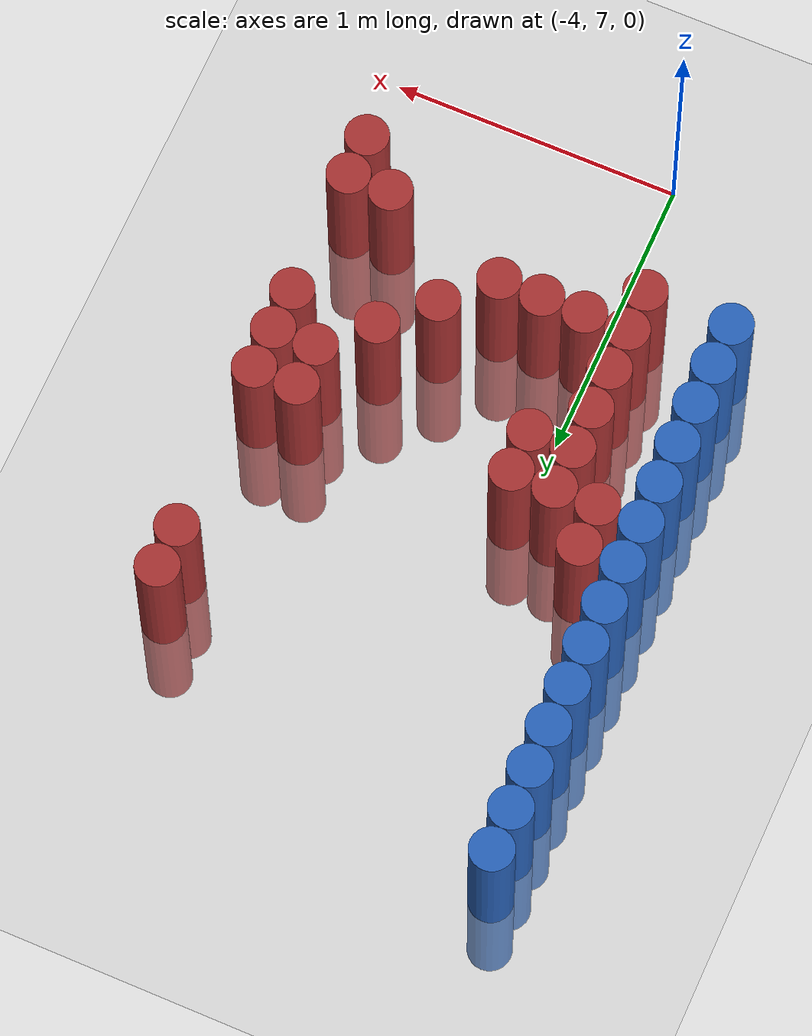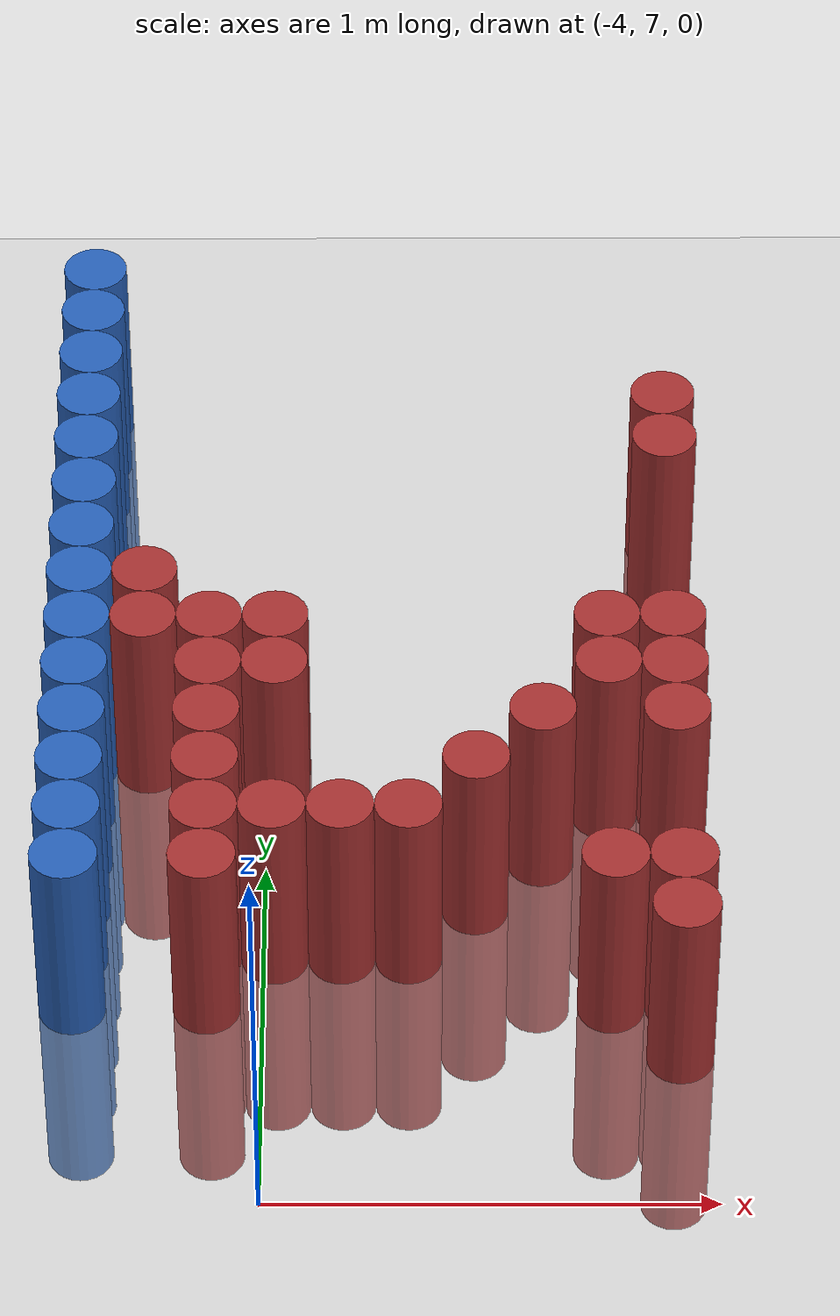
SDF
<sdf version="1.6">
 <world name="default">
  <model name="ground_plane">
   <static>1</static>
   <link name="link">
    <collision name="collision">
     <geometry><plane><normal>0 0 1</normal><size>100 100</size></plane></geometry>
     <surface><friction><ode><mu>100</mu><mu2>50</mu2></ode></friction></surface>
    </collision>
    <visual name="visual">
     <cast_shadows>0</cast_shadows>
     <geometry><plane><normal>0 0 1</normal><size>100 100</size></plane></geometry>
     <material>
      <script><uri>file://media/materials/scripts/gazebo.material</uri><name>Gazebo/Grey</name></script>
     </material>
    </visual>
   </link>
  </model>
  <model name="unit_cylinder_112">
   <static>1</static>
   <pose>-4.425000 7.575000 0.000000 0.000000 0.000000 0.000000</pose>
   <link name="link">
    <inertial>
     <mass>1</mass>
     <inertia><ixx>0.145833</ixx><ixy>0</ixy><ixz>0</ixz><iyy>0.145833</iyy><iyz>0</iyz><izz>0.125</izz></inertia>
    </inertial>
    <collision name="collision">
     <geometry><cylinder><radius>0.075000</radius><length>1</length></cylinder></geometry>
    </collision>
    <visual name="visual">
     <geometry><cylinder><radius>0.075000</radius><length>1</length></cylinder></geometry>
     <material>
      <ambient>0.152000 0.379000 0.720000 1</ambient>
      <diffuse>0.152000 0.379000 0.720000 1</diffuse>
     </material>
     <material>
      <script><name>Gazebo/Grey</name><uri>file://media/materials/scripts/gazebo.material</uri></script>
     </material>
    </visual>
    <sensor name="sensor_contact" type="contact"><contact><collision>collision</collision></contact></sensor>
   </link>
   <plugin filename="gz-sim-touchplugin-system" name="gz::sim::systems::TouchPlugin">
    <target>robot</target>
    <namespace>robot</namespace>
    <time>0.001</time>
    <enabled>true</enabled>
   </plugin>
  </model>
  <model name="unit_cylinder_113">
   <static>1</static>
   <pose>-4.425000 7.725000 0.000000 0.000000 0.000000 0.000000</pose>
   <link name="link">
    <inertial>
     <mass>1</mass>
     <inertia><ixx>0.145833</ixx><ixy>0</ixy><ixz>0</ixz><iyy>0.145833</iyy><iyz>0</iyz><izz>0.125</izz></inertia>
    </inertial>
    <collision name="collision">
     <geometry><cylinder><radius>0.075000</radius><length>1</length></cylinder></geometry>
    </collision>
    <visual name="visual">
     <geometry><cylinder><radius>0.075000</radius><length>1</length></cylinder></geometry>
     <material>
      <ambient>0.152000 0.379000 0.720000 1</ambient>
      <diffuse>0.152000 0.379000 0.720000 1</diffuse>
     </material>
     <material>
      <script><name>Gazebo/Grey</name><uri>file://media/materials/scripts/gazebo.material</uri></script>
     </material>
    </visual>
    <sensor name="sensor_contact" type="contact"><contact><collision>collision</collision></contact></sensor>
   </link>
   <plugin filename="gz-sim-touchplugin-system" name="gz::sim::systems::TouchPlugin">
    <target>robot</target>
    <namespace>robot</namespace>
    <time>0.001</time>
    <enabled>true</enabled>
   </plugin>
  </model>
  <model name="unit_cylinder_114">
   <static>1</static>
   <pose>-4.425000 7.875000 0.000000 0.000000 0.000000 0.000000</pose>
   <link name="link">
    <inertial>
     <mass>1</mass>
     <inertia><ixx>0.145833</ixx><ixy>0</ixy><ixz>0</ixz><iyy>0.145833</iyy><iyz>0</iyz><izz>0.125</izz></inertia>
    </inertial>
    <collision name="collision">
     <geometry><cylinder><radius>0.075000</radius><length>1</length></cylinder></geometry>
    </collision>
    <visual name="visual">
     <geometry><cylinder><radius>0.075000</radius><length>1</length></cylinder></geometry>
     <material>
      <ambient>0.152000 0.379000 0.720000 1</ambient>
      <diffuse>0.152000 0.379000 0.720000 1</diffuse>
     </material>
     <material>
      <script><name>Gazebo/Grey</name><uri>file://media/materials/scripts/gazebo.material</uri></script>
     </material>
    </visual>
    <sensor name="sensor_contact" type="contact"><contact><collision>collision</collision></contact></sensor>
   </link>
   <plugin filename="gz-sim-touchplugin-system" name="gz::sim::systems::TouchPlugin">
    <target>robot</target>
    <namespace>robot</namespace>
    <time>0.001</time>
    <enabled>true</enabled>
   </plugin>
  </model>
  <model name="unit_cylinder_115">
   <static>1</static>
   <pose>-4.425000 8.025000 0.000000 0.000000 0.000000 0.000000</pose>
   <link name="link">
    <inertial>
     <mass>1</mass>
     <inertia><ixx>0.145833</ixx><ixy>0</ixy><ixz>0</ixz><iyy>0.145833</iyy><iyz>0</iyz><izz>0.125</izz></inertia>
    </inertial>
    <collision name="collision">
     <geometry><cylinder><radius>0.075000</radius><length>1</length></cylinder></geometry>
    </collision>
    <visual name="visual">
     <geometry><cylinder><radius>0.075000</radius><length>1</length></cylinder></geometry>
     <material>
      <ambient>0.152000 0.379000 0.720000 1</ambient>
      <diffuse>0.152000 0.379000 0.720000 1</diffuse>
     </material>
     <material>
      <script><name>Gazebo/Grey</name><uri>file://media/materials/scripts/gazebo.material</uri></script>
     </material>
    </visual>
    <sensor name="sensor_contact" type="contact"><contact><collision>collision</collision></contact></sensor>
   </link>
   <plugin filename="gz-sim-touchplugin-system" name="gz::sim::systems::TouchPlugin">
    <target>robot</target>
    <namespace>robot</namespace>
    <time>0.001</time>
    <enabled>true</enabled>
   </plugin>
  </model>
  <model name="unit_cylinder_116">
   <static>1</static>
   <pose>-4.425000 8.175000 0.000000 0.000000 0.000000 0.000000</pose>
   <link name="link">
    <inertial>
     <mass>1</mass>
     <inertia><ixx>0.145833</ixx><ixy>0</ixy><ixz>0</ixz><iyy>0.145833</iyy><iyz>0</iyz><izz>0.125</izz></inertia>
    </inertial>
    <collision name="collision">
     <geometry><cylinder><radius>0.075000</radius><length>1</length></cylinder></geometry>
    </collision>
    <visual name="visual">
     <geometry><cylinder><radius>0.075000</radius><length>1</length></cylinder></geometry>
     <material>
      <ambient>0.152000 0.379000 0.720000 1</ambient>
      <diffuse>0.152000 0.379000 0.720000 1</diffuse>
     </material>
     <material>
      <script><name>Gazebo/Grey</name><uri>file://media/materials/scripts/gazebo.material</uri></script>
     </material>
    </visual>
    <sensor name="sensor_contact" type="contact"><contact><collision>collision</collision></contact></sensor>
   </link>
   <plugin filename="gz-sim-touchplugin-system" name="gz::sim::systems::TouchPlugin">
    <target>robot</target>
    <namespace>robot</namespace>
    <time>0.001</time>
    <enabled>true</enabled>
   </plugin>
  </model>
  <model name="unit_cylinder_117">
   <static>1</static>
   <pose>-4.425000 8.325000 0.000000 0.000000 0.000000 0.000000</pose>
   <link name="link">
    <inertial>
     <mass>1</mass>
     <inertia><ixx>0.145833</ixx><ixy>0</ixy><ixz>0</ixz><iyy>0.145833</iyy><iyz>0</iyz><izz>0.125</izz></inertia>
    </inertial>
    <collision name="collision">
     <geometry><cylinder><radius>0.075000</radius><length>1</length></cylinder></geometry>
    </collision>
    <visual name="visual">
     <geometry><cylinder><radius>0.075000</radius><length>1</length></cylinder></geometry>
     <material>
      <ambient>0.152000 0.379000 0.720000 1</ambient>
      <diffuse>0.152000 0.379000 0.720000 1</diffuse>
     </material>
     <material>
      <script><name>Gazebo/Grey</name><uri>file://media/materials/scripts/gazebo.material</uri></script>
     </material>
    </visual>
    <sensor name="sensor_contact" type="contact"><contact><collision>collision</collision></contact></sensor>
   </link>
   <plugin filename="gz-sim-touchplugin-system" name="gz::sim::systems::TouchPlugin">
    <target>robot</target>
    <namespace>robot</namespace>
    <time>0.001</time>
    <enabled>true</enabled>
   </plugin>
  </model>
  <model name="unit_cylinder_118">
   <static>1</static>
   <pose>-4.425000 8.475000 0.000000 0.000000 0.000000 0.000000</pose>
   <link name="link">
    <inertial>
     <mass>1</mass>
     <inertia><ixx>0.145833</ixx><ixy>0</ixy><ixz>0</ixz><iyy>0.145833</iyy><iyz>0</iyz><izz>0.125</izz></inertia>
    </inertial>
    <collision name="collision">
     <geometry><cylinder><radius>0.075000</radius><length>1</length></cylinder></geometry>
    </collision>
    <visual name="visual">
     <geometry><cylinder><radius>0.075000</radius><length>1</length></cylinder></geometry>
     <material>
      <ambient>0.152000 0.379000 0.720000 1</ambient>
      <diffuse>0.152000 0.379000 0.720000 1</diffuse>
     </material>
     <material>
      <script><name>Gazebo/Grey</name><uri>file://media/materials/scripts/gazebo.material</uri></script>
     </material>
    </visual>
    <sensor name="sensor_contact" type="contact"><contact><collision>collision</collision></contact></sensor>
   </link>
   <plugin filename="gz-sim-touchplugin-system" name="gz::sim::systems::TouchPlugin">
    <target>robot</target>
    <namespace>robot</namespace>
    <time>0.001</time>
    <enabled>true</enabled>
   </plugin>
  </model>
  <model name="unit_cylinder_119">
   <static>1</static>
   <pose>-4.425000 8.625000 0.000000 0.000000 0.000000 0.000000</pose>
   <link name="link">
    <inertial>
     <mass>1</mass>
     <inertia><ixx>0.145833</ixx><ixy>0</ixy><ixz>0</ixz><iyy>0.145833</iyy><iyz>0</iyz><izz>0.125</izz></inertia>
    </inertial>
    <collision name="collision">
     <geometry><cylinder><radius>0.075000</radius><length>1</length></cylinder></geometry>
    </collision>
    <visual name="visual">
     <geometry><cylinder><radius>0.075000</radius><length>1</length></cylinder></geometry>
     <material>
      <ambient>0.152000 0.379000 0.720000 1</ambient>
      <diffuse>0.152000 0.379000 0.720000 1</diffuse>
     </material>
     <material>
      <script><name>Gazebo/Grey</name><uri>file://media/materials/scripts/gazebo.material</uri></script>
     </material>
    </visual>
    <sensor name="sensor_contact" type="contact"><contact><collision>collision</collision></contact></sensor>
   </link>
   <plugin filename="gz-sim-touchplugin-system" name="gz::sim::systems::TouchPlugin">
    <target>robot</target>
    <namespace>robot</namespace>
    <time>0.001</time>
    <enabled>true</enabled>
   </plugin>
  </model>
  <model name="unit_cylinder_120">
   <static>1</static>
   <pose>-4.425000 8.775000 0.000000 0.000000 0.000000 0.000000</pose>
   <link name="link">
    <inertial>
     <mass>1</mass>
     <inertia><ixx>0.145833</ixx><ixy>0</ixy><ixz>0</ixz><iyy>0.145833</iyy><iyz>0</iyz><izz>0.125</izz></inertia>
    </inertial>
    <collision name="collision">
     <geometry><cylinder><radius>0.075000</radius><length>1</length></cylinder></geometry>
    </collision>
    <visual name="visual">
     <geometry><cylinder><radius>0.075000</radius><length>1</length></cylinder></geometry>
     <material>
      <ambient>0.152000 0.379000 0.720000 1</ambient>
      <diffuse>0.152000 0.379000 0.720000 1</diffuse>
     </material>
     <material>
      <script><name>Gazebo/Grey</name><uri>file://media/materials/scripts/gazebo.material</uri></script>
     </material>
    </visual>
    <sensor name="sensor_contact" type="contact"><contact><collision>collision</collision></contact></sensor>
   </link>
   <plugin filename="gz-sim-touchplugin-system" name="gz::sim::systems::TouchPlugin">
    <target>robot</target>
    <namespace>robot</namespace>
    <time>0.001</time>
    <enabled>true</enabled>
   </plugin>
  </model>
  <model name="unit_cylinder_121">
   <static>1</static>
   <pose>-4.425000 8.925000 0.000000 0.000000 0.000000 0.000000</pose>
   <link name="link">
    <inertial>
     <mass>1</mass>
     <inertia><ixx>0.145833</ixx><ixy>0</ixy><ixz>0</ixz><iyy>0.145833</iyy><iyz>0</iyz><izz>0.125</izz></inertia>
    </inertial>
    <collision name="collision">
     <geometry><cylinder><radius>0.075000</radius><length>1</length></cylinder></geometry>
    </collision>
    <visual name="visual">
     <geometry><cylinder><radius>0.075000</radius><length>1</length></cylinder></geometry>
     <material>
      <ambient>0.152000 0.379000 0.720000 1</ambient>
      <diffuse>0.152000 0.379000 0.720000 1</diffuse>
     </material>
     <material>
      <script><name>Gazebo/Grey</name><uri>file://media/materials/scripts/gazebo.material</uri></script>
     </material>
    </visual>
    <sensor name="sensor_contact" type="contact"><contact><collision>collision</collision></contact></sensor>
   </link>
   <plugin filename="gz-sim-touchplugin-system" name="gz::sim::systems::TouchPlugin">
    <target>robot</target>
    <namespace>robot</namespace>
    <time>0.001</time>
    <enabled>true</enabled>
   </plugin>
  </model>
  <model name="unit_cylinder_122">
   <static>1</static>
   <pose>-4.425000 9.075000 0.000000 0.000000 0.000000 0.000000</pose>
   <link name="link">
    <inertial>
     <mass>1</mass>
     <inertia><ixx>0.145833</ixx><ixy>0</ixy><ixz>0</ixz><iyy>0.145833</iyy><iyz>0</iyz><izz>0.125</izz></inertia>
    </inertial>
    <collision name="collision">
     <geometry><cylinder><radius>0.075000</radius><length>1</length></cylinder></geometry>
    </collision>
    <visual name="visual">
     <geometry><cylinder><radius>0.075000</radius><length>1</length></cylinder></geometry>
     <material>
      <ambient>0.152000 0.379000 0.720000 1</ambient>
      <diffuse>0.152000 0.379000 0.720000 1</diffuse>
     </material>
     <material>
      <script><name>Gazebo/Grey</name><uri>file://media/materials/scripts/gazebo.material</uri></script>
     </material>
    </visual>
    <sensor name="sensor_contact" type="contact"><contact><collision>collision</collision></contact></sensor>
   </link>
   <plugin filename="gz-sim-touchplugin-system" name="gz::sim::systems::TouchPlugin">
    <target>robot</target>
    <namespace>robot</namespace>
    <time>0.001</time>
    <enabled>true</enabled>
   </plugin>
  </model>
  <model name="unit_cylinder_123">
   <static>1</static>
   <pose>-4.425000 9.225000 0.000000 0.000000 0.000000 0.000000</pose>
   <link name="link">
    <inertial>
     <mass>1</mass>
     <inertia><ixx>0.145833</ixx><ixy>0</ixy><ixz>0</ixz><iyy>0.145833</iyy><iyz>0</iyz><izz>0.125</izz></inertia>
    </inertial>
    <collision name="collision">
     <geometry><cylinder><radius>0.075000</radius><length>1</length></cylinder></geometry>
    </collision>
    <visual name="visual">
     <geometry><cylinder><radius>0.075000</radius><length>1</length></cylinder></geometry>
     <material>
      <ambient>0.152000 0.379000 0.720000 1</ambient>
      <diffuse>0.152000 0.379000 0.720000 1</diffuse>
     </material>
     <material>
      <script><name>Gazebo/Grey</name><uri>file://media/materials/scripts/gazebo.material</uri></script>
     </material>
    </visual>
    <sensor name="sensor_contact" type="contact"><contact><collision>collision</collision></contact></sensor>
   </link>
   <plugin filename="gz-sim-touchplugin-system" name="gz::sim::systems::TouchPlugin">
    <target>robot</target>
    <namespace>robot</namespace>
    <time>0.001</time>
    <enabled>true</enabled>
   </plugin>
  </model>
  <model name="unit_cylinder_124">
   <static>1</static>
   <pose>-4.425000 9.375000 0.000000 0.000000 0.000000 0.000000</pose>
   <link name="link">
    <inertial>
     <mass>1</mass>
     <inertia><ixx>0.145833</ixx><ixy>0</ixy><ixz>0</ixz><iyy>0.145833</iyy><iyz>0</iyz><izz>0.125</izz></inertia>
    </inertial>
    <collision name="collision">
     <geometry><cylinder><radius>0.075000</radius><length>1</length></cylinder></geometry>
    </collision>
    <visual name="visual">
     <geometry><cylinder><radius>0.075000</radius><length>1</length></cylinder></geometry>
     <material>
      <ambient>0.152000 0.379000 0.720000 1</ambient>
      <diffuse>0.152000 0.379000 0.720000 1</diffuse>
     </material>
     <material>
      <script><name>Gazebo/Grey</name><uri>file://media/materials/scripts/gazebo.material</uri></script>
     </material>
    </visual>
    <sensor name="sensor_contact" type="contact"><contact><collision>collision</collision></contact></sensor>
   </link>
   <plugin filename="gz-sim-touchplugin-system" name="gz::sim::systems::TouchPlugin">
    <target>robot</target>
    <namespace>robot</namespace>
    <time>0.001</time>
    <enabled>true</enabled>
   </plugin>
  </model>
  <model name="unit_cylinder_125">
   <static>1</static>
   <pose>-4.425000 9.525000 0.000000 0.000000 0.000000 0.000000</pose>
   <link name="link">
    <inertial>
     <mass>1</mass>
     <inertia><ixx>0.145833</ixx><ixy>0</ixy><ixz>0</ixz><iyy>0.145833</iyy><iyz>0</iyz><izz>0.125</izz></inertia>
    </inertial>
    <collision name="collision">
     <geometry><cylinder><radius>0.075000</radius><length>1</length></cylinder></geometry>
    </collision>
    <visual name="visual">
     <geometry><cylinder><radius>0.075000</radius><length>1</length></cylinder></geometry>
     <material>
      <ambient>0.152000 0.379000 0.720000 1</ambient>
      <diffuse>0.152000 0.379000 0.720000 1</diffuse>
     </material>
     <material>
      <script><name>Gazebo/Grey</name><uri>file://media/materials/scripts/gazebo.material</uri></script>
     </material>
    </visual>
    <sensor name="sensor_contact" type="contact"><contact><collision>collision</collision></contact></sensor>
   </link>
   <plugin filename="gz-sim-touchplugin-system" name="gz::sim::systems::TouchPlugin">
    <target>robot</target>
    <namespace>robot</namespace>
    <time>0.001</time>
    <enabled>true</enabled>
   </plugin>
  </model>
  <model name="unit_cylinder_132">
   <static>1</static>
   <pose>-4.275000 8.325000 0.000000 0.000000 0.000000 0.000000</pose>
   <link name="link">
    <inertial>
     <mass>1</mass>
     <inertia><ixx>0.145833</ixx><ixy>0</ixy><ixz>0</ixz><iyy>0.145833</iyy><iyz>0</iyz><izz>0.125</izz></inertia>
    </inertial>
    <collision name="collision">
     <geometry><cylinder><radius>0.075000</radius><length>1</length></cylinder></geometry>
    </collision>
    <visual name="visual">
     <geometry><cylinder><radius>0.075000</radius><length>1</length></cylinder></geometry>
     <material>
      <ambient>0.648000 0.192000 0.192000 1</ambient>
      <diffuse>0.648000 0.192000 0.192000 1</diffuse>
     </material>
     <material>
      <script><name>Gazebo/Grey</name><uri>file://media/materials/scripts/gazebo.material</uri></script>
     </material>
    </visual>
    <sensor name="sensor_contact" type="contact"><contact><collision>collision</collision></contact></sensor>
   </link>
   <plugin filename="gz-sim-touchplugin-system" name="gz::sim::systems::TouchPlugin">
    <target>robot</target>
    <namespace>robot</namespace>
    <time>0.001</time>
    <enabled>true</enabled>
   </plugin>
  </model>
  <model name="unit_cylinder_133">
   <static>1</static>
   <pose>-4.275000 8.475000 0.000000 0.000000 0.000000 0.000000</pose>
   <link name="link">
    <inertial>
     <mass>1</mass>
     <inertia><ixx>0.145833</ixx><ixy>0</ixy><ixz>0</ixz><iyy>0.145833</iyy><iyz>0</iyz><izz>0.125</izz></inertia>
    </inertial>
    <collision name="collision">
     <geometry><cylinder><radius>0.075000</radius><length>1</length></cylinder></geometry>
    </collision>
    <visual name="visual">
     <geometry><cylinder><radius>0.075000</radius><length>1</length></cylinder></geometry>
     <material>
      <ambient>0.648000 0.192000 0.192000 1</ambient>
      <diffuse>0.648000 0.192000 0.192000 1</diffuse>
     </material>
     <material>
      <script><name>Gazebo/Grey</name><uri>file://media/materials/scripts/gazebo.material</uri></script>
     </material>
    </visual>
    <sensor name="sensor_contact" type="contact"><contact><collision>collision</collision></contact></sensor>
   </link>
   <plugin filename="gz-sim-touchplugin-system" name="gz::sim::systems::TouchPlugin">
    <target>robot</target>
    <namespace>robot</namespace>
    <time>0.001</time>
    <enabled>true</enabled>
   </plugin>
  </model>
  <model name="unit_cylinder_140">
   <static>1</static>
   <pose>-4.125000 7.575000 0.000000 0.000000 0.000000 0.000000</pose>
   <link name="link">
    <inertial>
     <mass>1</mass>
     <inertia><ixx>0.145833</ixx><ixy>0</ixy><ixz>0</ixz><iyy>0.145833</iyy><iyz>0</iyz><izz>0.125</izz></inertia>
    </inertial>
    <collision name="collision">
     <geometry><cylinder><radius>0.075000</radius><length>1</length></cylinder></geometry>
    </collision>
    <visual name="visual">
     <geometry><cylinder><radius>0.075000</radius><length>1</length></cylinder></geometry>
     <material>
      <ambient>0.648000 0.192000 0.192000 1</ambient>
      <diffuse>0.648000 0.192000 0.192000 1</diffuse>
     </material>
     <material>
      <script><name>Gazebo/Grey</name><uri>file://media/materials/scripts/gazebo.material</uri></script>
     </material>
    </visual>
    <sensor name="sensor_contact" type="contact"><contact><collision>collision</collision></contact></sensor>
   </link>
   <plugin filename="gz-sim-touchplugin-system" name="gz::sim::systems::TouchPlugin">
    <target>robot</target>
    <namespace>robot</namespace>
    <time>0.001</time>
    <enabled>true</enabled>
   </plugin>
  </model>
  <model name="unit_cylinder_141">
   <static>1</static>
   <pose>-4.125000 7.725000 0.000000 0.000000 0.000000 0.000000</pose>
   <link name="link">
    <inertial>
     <mass>1</mass>
     <inertia><ixx>0.145833</ixx><ixy>0</ixy><ixz>0</ixz><iyy>0.145833</iyy><iyz>0</iyz><izz>0.125</izz></inertia>
    </inertial>
    <collision name="collision">
     <geometry><cylinder><radius>0.075000</radius><length>1</length></cylinder></geometry>
    </collision>
    <visual name="visual">
     <geometry><cylinder><radius>0.075000</radius><length>1</length></cylinder></geometry>
     <material>
      <ambient>0.648000 0.192000 0.192000 1</ambient>
      <diffuse>0.648000 0.192000 0.192000 1</diffuse>
     </material>
     <material>
      <script><name>Gazebo/Grey</name><uri>file://media/materials/scripts/gazebo.material</uri></script>
     </material>
    </visual>
    <sensor name="sensor_contact" type="contact"><contact><collision>collision</collision></contact></sensor>
   </link>
   <plugin filename="gz-sim-touchplugin-system" name="gz::sim::systems::TouchPlugin">
    <target>robot</target>
    <namespace>robot</namespace>
    <time>0.001</time>
    <enabled>true</enabled>
   </plugin>
  </model>
  <model name="unit_cylinder_142">
   <static>1</static>
   <pose>-4.125000 7.875000 0.000000 0.000000 0.000000 0.000000</pose>
   <link name="link">
    <inertial>
     <mass>1</mass>
     <inertia><ixx>0.145833</ixx><ixy>0</ixy><ixz>0</ixz><iyy>0.145833</iyy><iyz>0</iyz><izz>0.125</izz></inertia>
    </inertial>
    <collision name="collision">
     <geometry><cylinder><radius>0.075000</radius><length>1</length></cylinder></geometry>
    </collision>
    <visual name="visual">
     <geometry><cylinder><radius>0.075000</radius><length>1</length></cylinder></geometry>
     <material>
      <ambient>0.648000 0.192000 0.192000 1</ambient>
      <diffuse>0.648000 0.192000 0.192000 1</diffuse>
     </material>
     <material>
      <script><name>Gazebo/Grey</name><uri>file://media/materials/scripts/gazebo.material</uri></script>
     </material>
    </visual>
    <sensor name="sensor_contact" type="contact"><contact><collision>collision</collision></contact></sensor>
   </link>
   <plugin filename="gz-sim-touchplugin-system" name="gz::sim::systems::TouchPlugin">
    <target>robot</target>
    <namespace>robot</namespace>
    <time>0.001</time>
    <enabled>true</enabled>
   </plugin>
  </model>
  <model name="unit_cylinder_143">
   <static>1</static>
   <pose>-4.125000 8.025000 0.000000 0.000000 0.000000 0.000000</pose>
   <link name="link">
    <inertial>
     <mass>1</mass>
     <inertia><ixx>0.145833</ixx><ixy>0</ixy><ixz>0</ixz><iyy>0.145833</iyy><iyz>0</iyz><izz>0.125</izz></inertia>
    </inertial>
    <collision name="collision">
     <geometry><cylinder><radius>0.075000</radius><length>1</length></cylinder></geometry>
    </collision>
    <visual name="visual">
     <geometry><cylinder><radius>0.075000</radius><length>1</length></cylinder></geometry>
     <material>
      <ambient>0.648000 0.192000 0.192000 1</ambient>
      <diffuse>0.648000 0.192000 0.192000 1</diffuse>
     </material>
     <material>
      <script><name>Gazebo/Grey</name><uri>file://media/materials/scripts/gazebo.material</uri></script>
     </material>
    </visual>
    <sensor name="sensor_contact" type="contact"><contact><collision>collision</collision></contact></sensor>
   </link>
   <plugin filename="gz-sim-touchplugin-system" name="gz::sim::systems::TouchPlugin">
    <target>robot</target>
    <namespace>robot</namespace>
    <time>0.001</time>
    <enabled>true</enabled>
   </plugin>
  </model>
  <model name="unit_cylinder_144">
   <static>1</static>
   <pose>-4.125000 8.175000 0.000000 0.000000 0.000000 0.000000</pose>
   <link name="link">
    <inertial>
     <mass>1</mass>
     <inertia><ixx>0.145833</ixx><ixy>0</ixy><ixz>0</ixz><iyy>0.145833</iyy><iyz>0</iyz><izz>0.125</izz></inertia>
    </inertial>
    <collision name="collision">
     <geometry><cylinder><radius>0.075000</radius><length>1</length></cylinder></geometry>
    </collision>
    <visual name="visual">
     <geometry><cylinder><radius>0.075000</radius><length>1</length></cylinder></geometry>
     <material>
      <ambient>0.648000 0.192000 0.192000 1</ambient>
      <diffuse>0.648000 0.192000 0.192000 1</diffuse>
     </material>
     <material>
      <script><name>Gazebo/Grey</name><uri>file://media/materials/scripts/gazebo.material</uri></script>
     </material>
    </visual>
    <sensor name="sensor_contact" type="contact"><contact><collision>collision</collision></contact></sensor>
   </link>
   <plugin filename="gz-sim-touchplugin-system" name="gz::sim::systems::TouchPlugin">
    <target>robot</target>
    <namespace>robot</namespace>
    <time>0.001</time>
    <enabled>true</enabled>
   </plugin>
  </model>
  <model name="unit_cylinder_145">
   <static>1</static>
   <pose>-4.125000 8.325000 0.000000 0.000000 0.000000 0.000000</pose>
   <link name="link">
    <inertial>
     <mass>1</mass>
     <inertia><ixx>0.145833</ixx><ixy>0</ixy><ixz>0</ixz><iyy>0.145833</iyy><iyz>0</iyz><izz>0.125</izz></inertia>
    </inertial>
    <collision name="collision">
     <geometry><cylinder><radius>0.075000</radius><length>1</length></cylinder></geometry>
    </collision>
    <visual name="visual">
     <geometry><cylinder><radius>0.075000</radius><length>1</length></cylinder></geometry>
     <material>
      <ambient>0.648000 0.192000 0.192000 1</ambient>
      <diffuse>0.648000 0.192000 0.192000 1</diffuse>
     </material>
     <material>
      <script><name>Gazebo/Grey</name><uri>file://media/materials/scripts/gazebo.material</uri></script>
     </material>
    </visual>
    <sensor name="sensor_contact" type="contact"><contact><collision>collision</collision></contact></sensor>
   </link>
   <plugin filename="gz-sim-touchplugin-system" name="gz::sim::systems::TouchPlugin">
    <target>robot</target>
    <namespace>robot</namespace>
    <time>0.001</time>
    <enabled>true</enabled>
   </plugin>
  </model>
  <model name="unit_cylinder_146">
   <static>1</static>
   <pose>-3.975000 7.725000 0.000000 0.000000 0.000000 0.000000</pose>
   <link name="link">
    <inertial>
     <mass>1</mass>
     <inertia><ixx>0.145833</ixx><ixy>0</ixy><ixz>0</ixz><iyy>0.145833</iyy><iyz>0</iyz><izz>0.125</izz></inertia>
    </inertial>
    <collision name="collision">
     <geometry><cylinder><radius>0.075000</radius><length>1</length></cylinder></geometry>
    </collision>
    <visual name="visual">
     <geometry><cylinder><radius>0.075000</radius><length>1</length></cylinder></geometry>
     <material>
      <ambient>0.648000 0.192000 0.192000 1</ambient>
      <diffuse>0.648000 0.192000 0.192000 1</diffuse>
     </material>
     <material>
      <script><name>Gazebo/Grey</name><uri>file://media/materials/scripts/gazebo.material</uri></script>
     </material>
    </visual>
    <sensor name="sensor_contact" type="contact"><contact><collision>collision</collision></contact></sensor>
   </link>
   <plugin filename="gz-sim-touchplugin-system" name="gz::sim::systems::TouchPlugin">
    <target>robot</target>
    <namespace>robot</namespace>
    <time>0.001</time>
    <enabled>true</enabled>
   </plugin>
  </model>
  <model name="unit_cylinder_147">
   <static>1</static>
   <pose>-3.975000 8.175000 0.000000 0.000000 0.000000 0.000000</pose>
   <link name="link">
    <inertial>
     <mass>1</mass>
     <inertia><ixx>0.145833</ixx><ixy>0</ixy><ixz>0</ixz><iyy>0.145833</iyy><iyz>0</iyz><izz>0.125</izz></inertia>
    </inertial>
    <collision name="collision">
     <geometry><cylinder><radius>0.075000</radius><length>1</length></cylinder></geometry>
    </collision>
    <visual name="visual">
     <geometry><cylinder><radius>0.075000</radius><length>1</length></cylinder></geometry>
     <material>
      <ambient>0.648000 0.192000 0.192000 1</ambient>
      <diffuse>0.648000 0.192000 0.192000 1</diffuse>
     </material>
     <material>
      <script><name>Gazebo/Grey</name><uri>file://media/materials/scripts/gazebo.material</uri></script>
     </material>
    </visual>
    <sensor name="sensor_contact" type="contact"><contact><collision>collision</collision></contact></sensor>
   </link>
   <plugin filename="gz-sim-touchplugin-system" name="gz::sim::systems::TouchPlugin">
    <target>robot</target>
    <namespace>robot</namespace>
    <time>0.001</time>
    <enabled>true</enabled>
   </plugin>
  </model>
  <model name="unit_cylinder_148">
   <static>1</static>
   <pose>-3.975000 8.325000 0.000000 0.000000 0.000000 0.000000</pose>
   <link name="link">
    <inertial>
     <mass>1</mass>
     <inertia><ixx>0.145833</ixx><ixy>0</ixy><ixz>0</ixz><iyy>0.145833</iyy><iyz>0</iyz><izz>0.125</izz></inertia>
    </inertial>
    <collision name="collision">
     <geometry><cylinder><radius>0.075000</radius><length>1</length></cylinder></geometry>
    </collision>
    <visual name="visual">
     <geometry><cylinder><radius>0.075000</radius><length>1</length></cylinder></geometry>
     <material>
      <ambient>0.648000 0.192000 0.192000 1</ambient>
      <diffuse>0.648000 0.192000 0.192000 1</diffuse>
     </material>
     <material>
      <script><name>Gazebo/Grey</name><uri>file://media/materials/scripts/gazebo.material</uri></script>
     </material>
    </visual>
    <sensor name="sensor_contact" type="contact"><contact><collision>collision</collision></contact></sensor>
   </link>
   <plugin filename="gz-sim-touchplugin-system" name="gz::sim::systems::TouchPlugin">
    <target>robot</target>
    <namespace>robot</namespace>
    <time>0.001</time>
    <enabled>true</enabled>
   </plugin>
  </model>
  <model name="unit_cylinder_151">
   <static>1</static>
   <pose>-3.825000 7.725000 0.000000 0.000000 0.000000 0.000000</pose>
   <link name="link">
    <inertial>
     <mass>1</mass>
     <inertia><ixx>0.145833</ixx><ixy>0</ixy><ixz>0</ixz><iyy>0.145833</iyy><iyz>0</iyz><izz>0.125</izz></inertia>
    </inertial>
    <collision name="collision">
     <geometry><cylinder><radius>0.075000</radius><length>1</length></cylinder></geometry>
    </collision>
    <visual name="visual">
     <geometry><cylinder><radius>0.075000</radius><length>1</length></cylinder></geometry>
     <material>
      <ambient>0.648000 0.192000 0.192000 1</ambient>
      <diffuse>0.648000 0.192000 0.192000 1</diffuse>
     </material>
     <material>
      <script><name>Gazebo/Grey</name><uri>file://media/materials/scripts/gazebo.material</uri></script>
     </material>
    </visual>
    <sensor name="sensor_contact" type="contact"><contact><collision>collision</collision></contact></sensor>
   </link>
   <plugin filename="gz-sim-touchplugin-system" name="gz::sim::systems::TouchPlugin">
    <target>robot</target>
    <namespace>robot</namespace>
    <time>0.001</time>
    <enabled>true</enabled>
   </plugin>
  </model>
  <model name="unit_cylinder_160">
   <static>1</static>
   <pose>-3.675000 7.725000 0.000000 0.000000 0.000000 0.000000</pose>
   <link name="link">
    <inertial>
     <mass>1</mass>
     <inertia><ixx>0.145833</ixx><ixy>0</ixy><ixz>0</ixz><iyy>0.145833</iyy><iyz>0</iyz><izz>0.125</izz></inertia>
    </inertial>
    <collision name="collision">
     <geometry><cylinder><radius>0.075000</radius><length>1</length></cylinder></geometry>
    </collision>
    <visual name="visual">
     <geometry><cylinder><radius>0.075000</radius><length>1</length></cylinder></geometry>
     <material>
      <ambient>0.648000 0.192000 0.192000 1</ambient>
      <diffuse>0.648000 0.192000 0.192000 1</diffuse>
     </material>
     <material>
      <script><name>Gazebo/Grey</name><uri>file://media/materials/scripts/gazebo.material</uri></script>
     </material>
    </visual>
    <sensor name="sensor_contact" type="contact"><contact><collision>collision</collision></contact></sensor>
   </link>
   <plugin filename="gz-sim-touchplugin-system" name="gz::sim::systems::TouchPlugin">
    <target>robot</target>
    <namespace>robot</namespace>
    <time>0.001</time>
    <enabled>true</enabled>
   </plugin>
  </model>
  <model name="unit_cylinder_168">
   <static>1</static>
   <pose>-3.525000 7.875000 0.000000 0.000000 0.000000 0.000000</pose>
   <link name="link">
    <inertial>
     <mass>1</mass>
     <inertia><ixx>0.145833</ixx><ixy>0</ixy><ixz>0</ixz><iyy>0.145833</iyy><iyz>0</iyz><izz>0.125</izz></inertia>
    </inertial>
    <collision name="collision">
     <geometry><cylinder><radius>0.075000</radius><length>1</length></cylinder></geometry>
    </collision>
    <visual name="visual">
     <geometry><cylinder><radius>0.075000</radius><length>1</length></cylinder></geometry>
     <material>
      <ambient>0.648000 0.192000 0.192000 1</ambient>
      <diffuse>0.648000 0.192000 0.192000 1</diffuse>
     </material>
     <material>
      <script><name>Gazebo/Grey</name><uri>file://media/materials/scripts/gazebo.material</uri></script>
     </material>
    </visual>
    <sensor name="sensor_contact" type="contact"><contact><collision>collision</collision></contact></sensor>
   </link>
   <plugin filename="gz-sim-touchplugin-system" name="gz::sim::systems::TouchPlugin">
    <target>robot</target>
    <namespace>robot</namespace>
    <time>0.001</time>
    <enabled>true</enabled>
   </plugin>
  </model>
  <model name="unit_cylinder_179">
   <static>1</static>
   <pose>-3.375000 8.025000 0.000000 0.000000 0.000000 0.000000</pose>
   <link name="link">
    <inertial>
     <mass>1</mass>
     <inertia><ixx>0.145833</ixx><ixy>0</ixy><ixz>0</ixz><iyy>0.145833</iyy><iyz>0</iyz><izz>0.125</izz></inertia>
    </inertial>
    <collision name="collision">
     <geometry><cylinder><radius>0.075000</radius><length>1</length></cylinder></geometry>
    </collision>
    <visual name="visual">
     <geometry><cylinder><radius>0.075000</radius><length>1</length></cylinder></geometry>
     <material>
      <ambient>0.648000 0.192000 0.192000 1</ambient>
      <diffuse>0.648000 0.192000 0.192000 1</diffuse>
     </material>
     <material>
      <script><name>Gazebo/Grey</name><uri>file://media/materials/scripts/gazebo.material</uri></script>
     </material>
    </visual>
    <sensor name="sensor_contact" type="contact"><contact><collision>collision</collision></contact></sensor>
   </link>
   <plugin filename="gz-sim-touchplugin-system" name="gz::sim::systems::TouchPlugin">
    <target>robot</target>
    <namespace>robot</namespace>
    <time>0.001</time>
    <enabled>true</enabled>
   </plugin>
  </model>
  <model name="unit_cylinder_188">
   <static>1</static>
   <pose>-3.225000 7.575000 0.000000 0.000000 0.000000 0.000000</pose>
   <link name="link">
    <inertial>
     <mass>1</mass>
     <inertia><ixx>0.145833</ixx><ixy>0</ixy><ixz>0</ixz><iyy>0.145833</iyy><iyz>0</iyz><izz>0.125</izz></inertia>
    </inertial>
    <collision name="collision">
     <geometry><cylinder><radius>0.075000</radius><length>1</length></cylinder></geometry>
    </collision>
    <visual name="visual">
     <geometry><cylinder><radius>0.075000</radius><length>1</length></cylinder></geometry>
     <material>
      <ambient>0.648000 0.192000 0.192000 1</ambient>
      <diffuse>0.648000 0.192000 0.192000 1</diffuse>
     </material>
     <material>
      <script><name>Gazebo/Grey</name><uri>file://media/materials/scripts/gazebo.material</uri></script>
     </material>
    </visual>
    <sensor name="sensor_contact" type="contact"><contact><collision>collision</collision></contact></sensor>
   </link>
   <plugin filename="gz-sim-touchplugin-system" name="gz::sim::systems::TouchPlugin">
    <target>robot</target>
    <namespace>robot</namespace>
    <time>0.001</time>
    <enabled>true</enabled>
   </plugin>
  </model>
  <model name="unit_cylinder_189">
   <static>1</static>
   <pose>-3.225000 8.175000 0.000000 0.000000 0.000000 0.000000</pose>
   <link name="link">
    <inertial>
     <mass>1</mass>
     <inertia><ixx>0.145833</ixx><ixy>0</ixy><ixz>0</ixz><iyy>0.145833</iyy><iyz>0</iyz><izz>0.125</izz></inertia>
    </inertial>
    <collision name="collision">
     <geometry><cylinder><radius>0.075000</radius><length>1</length></cylinder></geometry>
    </collision>
    <visual name="visual">
     <geometry><cylinder><radius>0.075000</radius><length>1</length></cylinder></geometry>
     <material>
      <ambient>0.648000 0.192000 0.192000 1</ambient>
      <diffuse>0.648000 0.192000 0.192000 1</diffuse>
     </material>
     <material>
      <script><name>Gazebo/Grey</name><uri>file://media/materials/scripts/gazebo.material</uri></script>
     </material>
    </visual>
    <sensor name="sensor_contact" type="contact"><contact><collision>collision</collision></contact></sensor>
   </link>
   <plugin filename="gz-sim-touchplugin-system" name="gz::sim::systems::TouchPlugin">
    <target>robot</target>
    <namespace>robot</namespace>
    <time>0.001</time>
    <enabled>true</enabled>
   </plugin>
  </model>
  <model name="unit_cylinder_190">
   <static>1</static>
   <pose>-3.225000 8.325000 0.000000 0.000000 0.000000 0.000000</pose>
   <link name="link">
    <inertial>
     <mass>1</mass>
     <inertia><ixx>0.145833</ixx><ixy>0</ixy><ixz>0</ixz><iyy>0.145833</iyy><iyz>0</iyz><izz>0.125</izz></inertia>
    </inertial>
    <collision name="collision">
     <geometry><cylinder><radius>0.075000</radius><length>1</length></cylinder></geometry>
    </collision>
    <visual name="visual">
     <geometry><cylinder><radius>0.075000</radius><length>1</length></cylinder></geometry>
     <material>
      <ambient>0.648000 0.192000 0.192000 1</ambient>
      <diffuse>0.648000 0.192000 0.192000 1</diffuse>
     </material>
     <material>
      <script><name>Gazebo/Grey</name><uri>file://media/materials/scripts/gazebo.material</uri></script>
     </material>
    </visual>
    <sensor name="sensor_contact" type="contact"><contact><collision>collision</collision></contact></sensor>
   </link>
   <plugin filename="gz-sim-touchplugin-system" name="gz::sim::systems::TouchPlugin">
    <target>robot</target>
    <namespace>robot</namespace>
    <time>0.001</time>
    <enabled>true</enabled>
   </plugin>
  </model>
  <model name="unit_cylinder_196">
   <static>1</static>
   <pose>-3.075000 7.425000 0.000000 0.000000 0.000000 0.000000</pose>
   <link name="link">
    <inertial>
     <mass>1</mass>
     <inertia><ixx>0.145833</ixx><ixy>0</ixy><ixz>0</ixz><iyy>0.145833</iyy><iyz>0</iyz><izz>0.125</izz></inertia>
    </inertial>
    <collision name="collision">
     <geometry><cylinder><radius>0.075000</radius><length>1</length></cylinder></geometry>
    </collision>
    <visual name="visual">
     <geometry><cylinder><radius>0.075000</radius><length>1</length></cylinder></geometry>
     <material>
      <ambient>0.648000 0.192000 0.192000 1</ambient>
      <diffuse>0.648000 0.192000 0.192000 1</diffuse>
     </material>
     <material>
      <script><name>Gazebo/Grey</name><uri>file://media/materials/scripts/gazebo.material</uri></script>
     </material>
    </visual>
    <sensor name="sensor_contact" type="contact"><contact><collision>collision</collision></contact></sensor>
   </link>
   <plugin filename="gz-sim-touchplugin-system" name="gz::sim::systems::TouchPlugin">
    <target>robot</target>
    <namespace>robot</namespace>
    <time>0.001</time>
    <enabled>true</enabled>
   </plugin>
  </model>
  <model name="unit_cylinder_197">
   <static>1</static>
   <pose>-3.075000 7.575000 0.000000 0.000000 0.000000 0.000000</pose>
   <link name="link">
    <inertial>
     <mass>1</mass>
     <inertia><ixx>0.145833</ixx><ixy>0</ixy><ixz>0</ixz><iyy>0.145833</iyy><iyz>0</iyz><izz>0.125</izz></inertia>
    </inertial>
    <collision name="collision">
     <geometry><cylinder><radius>0.075000</radius><length>1</length></cylinder></geometry>
    </collision>
    <visual name="visual">
     <geometry><cylinder><radius>0.075000</radius><length>1</length></cylinder></geometry>
     <material>
      <ambient>0.648000 0.192000 0.192000 1</ambient>
      <diffuse>0.648000 0.192000 0.192000 1</diffuse>
     </material>
     <material>
      <script><name>Gazebo/Grey</name><uri>file://media/materials/scripts/gazebo.material</uri></script>
     </material>
    </visual>
    <sensor name="sensor_contact" type="contact"><contact><collision>collision</collision></contact></sensor>
   </link>
   <plugin filename="gz-sim-touchplugin-system" name="gz::sim::systems::TouchPlugin">
    <target>robot</target>
    <namespace>robot</namespace>
    <time>0.001</time>
    <enabled>true</enabled>
   </plugin>
  </model>
  <model name="unit_cylinder_198">
   <static>1</static>
   <pose>-3.075000 8.025000 0.000000 0.000000 0.000000 0.000000</pose>
   <link name="link">
    <inertial>
     <mass>1</mass>
     <inertia><ixx>0.145833</ixx><ixy>0</ixy><ixz>0</ixz><iyy>0.145833</iyy><iyz>0</iyz><izz>0.125</izz></inertia>
    </inertial>
    <collision name="collision">
     <geometry><cylinder><radius>0.075000</radius><length>1</length></cylinder></geometry>
    </collision>
    <visual name="visual">
     <geometry><cylinder><radius>0.075000</radius><length>1</length></cylinder></geometry>
     <material>
      <ambient>0.648000 0.192000 0.192000 1</ambient>
      <diffuse>0.648000 0.192000 0.192000 1</diffuse>
     </material>
     <material>
      <script><name>Gazebo/Grey</name><uri>file://media/materials/scripts/gazebo.material</uri></script>
     </material>
    </visual>
    <sensor name="sensor_contact" type="contact"><contact><collision>collision</collision></contact></sensor>
   </link>
   <plugin filename="gz-sim-touchplugin-system" name="gz::sim::systems::TouchPlugin">
    <target>robot</target>
    <namespace>robot</namespace>
    <time>0.001</time>
    <enabled>true</enabled>
   </plugin>
  </model>
  <model name="unit_cylinder_199">
   <static>1</static>
   <pose>-3.075000 8.175000 0.000000 0.000000 0.000000 0.000000</pose>
   <link name="link">
    <inertial>
     <mass>1</mass>
     <inertia><ixx>0.145833</ixx><ixy>0</ixy><ixz>0</ixz><iyy>0.145833</iyy><iyz>0</iyz><izz>0.125</izz></inertia>
    </inertial>
    <collision name="collision">
     <geometry><cylinder><radius>0.075000</radius><length>1</length></cylinder></geometry>
    </collision>
    <visual name="visual">
     <geometry><cylinder><radius>0.075000</radius><length>1</length></cylinder></geometry>
     <material>
      <ambient>0.648000 0.192000 0.192000 1</ambient>
      <diffuse>0.648000 0.192000 0.192000 1</diffuse>
     </material>
     <material>
      <script><name>Gazebo/Grey</name><uri>file://media/materials/scripts/gazebo.material</uri></script>
     </material>
    </visual>
    <sensor name="sensor_contact" type="contact"><contact><collision>collision</collision></contact></sensor>
   </link>
   <plugin filename="gz-sim-touchplugin-system" name="gz::sim::systems::TouchPlugin">
    <target>robot</target>
    <namespace>robot</namespace>
    <time>0.001</time>
    <enabled>true</enabled>
   </plugin>
  </model>
  <model name="unit_cylinder_200">
   <static>1</static>
   <pose>-3.075000 8.325000 0.000000 0.000000 0.000000 0.000000</pose>
   <link name="link">
    <inertial>
     <mass>1</mass>
     <inertia><ixx>0.145833</ixx><ixy>0</ixy><ixz>0</ixz><iyy>0.145833</iyy><iyz>0</iyz><izz>0.125</izz></inertia>
    </inertial>
    <collision name="collision">
     <geometry><cylinder><radius>0.075000</radius><length>1</length></cylinder></geometry>
    </collision>
    <visual name="visual">
     <geometry><cylinder><radius>0.075000</radius><length>1</length></cylinder></geometry>
     <material>
      <ambient>0.648000 0.192000 0.192000 1</ambient>
      <diffuse>0.648000 0.192000 0.192000 1</diffuse>
     </material>
     <material>
      <script><name>Gazebo/Grey</name><uri>file://media/materials/scripts/gazebo.material</uri></script>
     </material>
    </visual>
    <sensor name="sensor_contact" type="contact"><contact><collision>collision</collision></contact></sensor>
   </link>
   <plugin filename="gz-sim-touchplugin-system" name="gz::sim::systems::TouchPlugin">
    <target>robot</target>
    <namespace>robot</namespace>
    <time>0.001</time>
    <enabled>true</enabled>
   </plugin>
  </model>
  <model name="unit_cylinder_201">
   <static>1</static>
   <pose>-3.075000 8.925000 0.000000 0.000000 0.000000 0.000000</pose>
   <link name="link">
    <inertial>
     <mass>1</mass>
     <inertia><ixx>0.145833</ixx><ixy>0</ixy><ixz>0</ixz><iyy>0.145833</iyy><iyz>0</iyz><izz>0.125</izz></inertia>
    </inertial>
    <collision name="collision">
     <geometry><cylinder><radius>0.075000</radius><length>1</length></cylinder></geometry>
    </collision>
    <visual name="visual">
     <geometry><cylinder><radius>0.075000</radius><length>1</length></cylinder></geometry>
     <material>
      <ambient>0.648000 0.192000 0.192000 1</ambient>
      <diffuse>0.648000 0.192000 0.192000 1</diffuse>
     </material>
     <material>
      <script><name>Gazebo/Grey</name><uri>file://media/materials/scripts/gazebo.material</uri></script>
     </material>
    </visual>
    <sensor name="sensor_contact" type="contact"><contact><collision>collision</collision></contact></sensor>
   </link>
   <plugin filename="gz-sim-touchplugin-system" name="gz::sim::systems::TouchPlugin">
    <target>robot</target>
    <namespace>robot</namespace>
    <time>0.001</time>
    <enabled>true</enabled>
   </plugin>
  </model>
  <model name="unit_cylinder_202">
   <static>1</static>
   <pose>-3.075000 9.075000 0.000000 0.000000 0.000000 0.000000</pose>
   <link name="link">
    <inertial>
     <mass>1</mass>
     <inertia><ixx>0.145833</ixx><ixy>0</ixy><ixz>0</ixz><iyy>0.145833</iyy><iyz>0</iyz><izz>0.125</izz></inertia>
    </inertial>
    <collision name="collision">
     <geometry><cylinder><radius>0.075000</radius><length>1</length></cylinder></geometry>
    </collision>
    <visual name="visual">
     <geometry><cylinder><radius>0.075000</radius><length>1</length></cylinder></geometry>
     <material>
      <ambient>0.648000 0.192000 0.192000 1</ambient>
      <diffuse>0.648000 0.192000 0.192000 1</diffuse>
     </material>
     <material>
      <script><name>Gazebo/Grey</name><uri>file://media/materials/scripts/gazebo.material</uri></script>
     </material>
    </visual>
    <sensor name="sensor_contact" type="contact"><contact><collision>collision</collision></contact></sensor>
   </link>
   <plugin filename="gz-sim-touchplugin-system" name="gz::sim::systems::TouchPlugin">
    <target>robot</target>
    <namespace>robot</namespace>
    <time>0.001</time>
    <enabled>true</enabled>
   </plugin>
  </model>
 </world>
</sdf>
